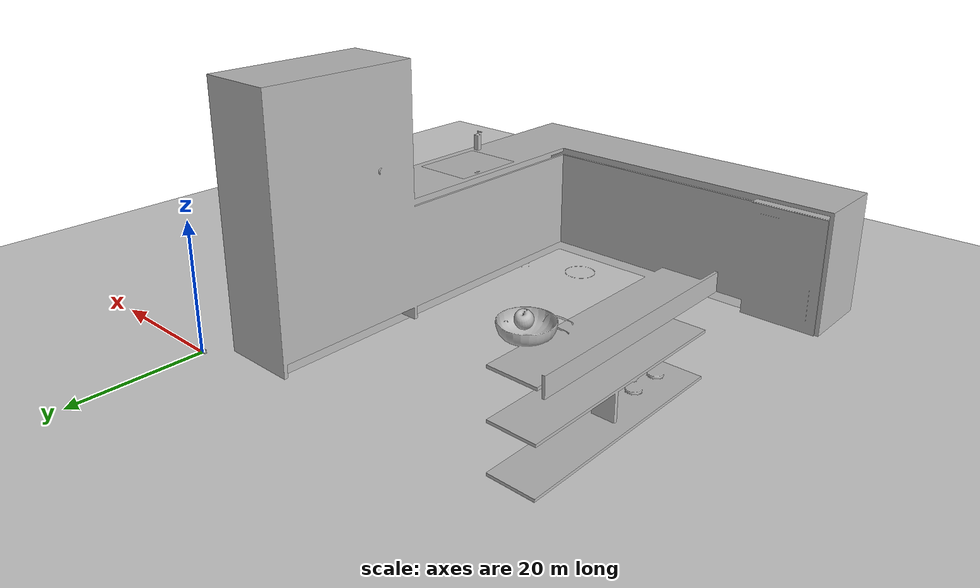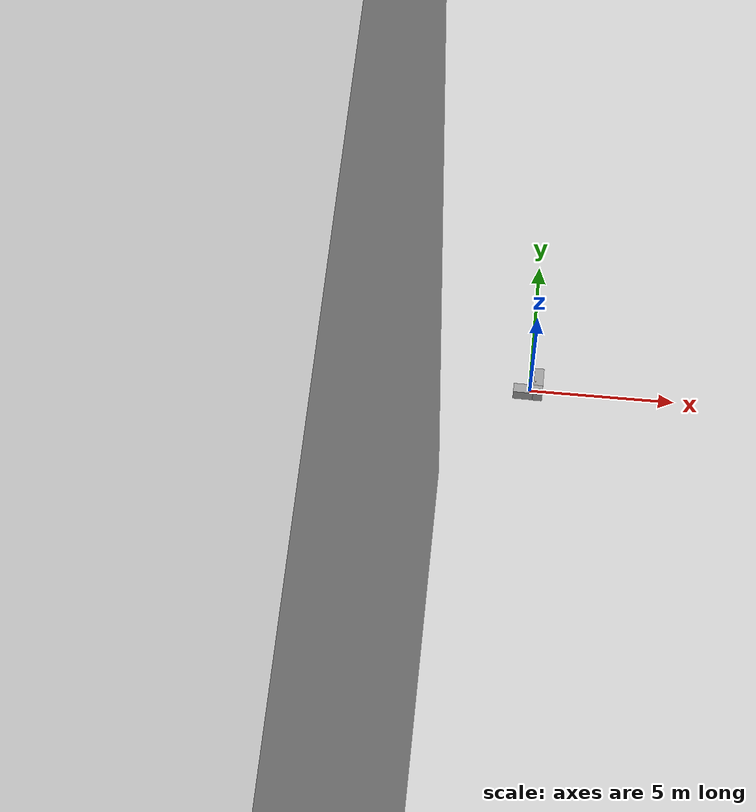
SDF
<sdf version="1.7">
 <world name="default">
  <light name="sun" type="directional">
   <pose>0 0 10 0 -0 0</pose>
   <diffuse>0.8 0.8 0.8 1</diffuse>
   <specular>0.2 0.2 0.2 1</specular>
   <attenuation>
    <range>1000</range>
    <constant>0.9</constant>
    <linear>0.01</linear>
    <quadratic>0.001</quadratic>
   </attenuation>
   <direction>-0.5 0.1 -0.9</direction>
   <spot><inner_angle>0</inner_angle><outer_angle>0</outer_angle><falloff>0</falloff></spot>
  </light>
  <model name="ground_plane">
   <static>1</static>
   <link name="link">
    <collision name="collision">
     <geometry><plane><normal>0 0 1</normal><size>100 100</size></plane></geometry>
     <surface>
      <contact><collide_bitmask>65535</collide_bitmask></contact>
      <friction><ode><mu>100</mu><mu2>50</mu2></ode></friction>
     </surface>
    </collision>
    <visual name="visual">
     <cast_shadows>0</cast_shadows>
     <geometry><plane><normal>0 0 1</normal><size>100 100</size></plane></geometry>
     <material>
      <script><uri>file://media/materials/scripts/gazebo.material</uri><name>Gazebo/Grey</name></script>
     </material>
    </visual>
   </link>
  </model>
  <gravity>0 0 -9.8</gravity>
  <magnetic_field>6e-06 2.3e-05 -4.2e-05</magnetic_field>
  <atmosphere type="adiabatic"/>
  <physics type="ode">
   <max_step_size>0.001</max_step_size>
   <real_time_factor>1</real_time_factor>
   <real_time_update_rate>1000</real_time_update_rate>
  </physics>
  <scene><ambient>0.4 0.4 0.4 1</ambient><background>0.7 0.7 0.7 1</background><shadows>1</shadows></scene>
  <spherical_coordinates>
   <surface_model>EARTH_WGS84</surface_model>
   <latitude_deg>0</latitude_deg>
   <longitude_deg>0</longitude_deg>
   <elevation>0</elevation>
   <heading_deg>0</heading_deg>
  </spherical_coordinates>
  <model name="kitchen">
   <static>1</static>
   <link name="kitchen">
    <visual name="visual">
     <geometry><mesh><uri>model://Kitchen/meshes/model.dae</uri><scale>0.5 0.5 0.5</scale></mesh></geometry>
    </visual>
   </link>
   <pose>0.467305 1.57082 0 0 0 -3.13984</pose>
  </model>
  <model name="kitchen_box">
   <link name="link_0">
    <pose>-4.0678 1.99751 0.272777 0 -0 0</pose>
    <visual name="visual">
     <geometry><box><size>0.331403 1 0.5</size></box></geometry>
     <material>
      <lighting>1</lighting>
      <script><uri>file://media/materials/scripts/gazebo.material</uri><name>Gazebo/Grey</name></script>
      <shader type="pixel"/>
     </material>
    </visual>
    <collision name="collision">
     <geometry><box><size>0.331403 1 0.5</size></box></geometry>
     <surface>
      <friction>
       <ode><mu>1</mu><mu2>1</mu2><fdir1>0 0 0</fdir1><slip1>0</slip1><slip2>0</slip2></ode>
       <torsional>
        <coefficient>1</coefficient>
        <patch_radius>0</patch_radius>
        <surface_radius>0</surface_radius>
        <use_patch_radius>1</use_patch_radius>
        <ode><slip>0</slip></ode>
       </torsional>
      </friction>
     </surface>
    </collision>
   </link>
   <link name="link_0_clone">
    <pose>-3.72184 2.32096 0.272777 0 0 -1.57838</pose>
    <visual name="visual">
     <geometry><box><size>0.331403 1 0.5</size></box></geometry>
     <material>
      <lighting>1</lighting>
      <script><uri>file://media/materials/scripts/gazebo.material</uri><name>Gazebo/Grey</name></script>
      <shader type="pixel"/>
     </material>
    </visual>
    <collision name="collision">
     <geometry><box><size>0.331403 1 0.5</size></box></geometry>
     <surface>
      <friction>
       <ode><mu>1</mu><mu2>1</mu2><fdir1>0 0 0</fdir1><slip1>0</slip1><slip2>0</slip2></ode>
       <torsional>
        <coefficient>1</coefficient>
        <patch_radius>0</patch_radius>
        <surface_radius>0</surface_radius>
        <use_patch_radius>1</use_patch_radius>
        <ode><slip>0</slip></ode>
       </torsional>
      </friction>
     </surface>
    </collision>
   </link>
   <static>0</static>
   <pose>-3.80118 2.15024 -0.022776 0 -0 3.13892</pose>
  </model>
  <model name="wood_cube_2_5cm">
   <link name="link">
    <pose>0 0 0.0125 0 -0 0</pose>
    <inertial>
     <mass>0.0073</mass>
     <inertia>
      <ixx>7.60417e-07</ixx>
      <ixy>0</ixy>
      <ixz>0</ixz>
      <iyy>7.60417e-07</iyy>
      <iyz>0</iyz>
      <izz>7.60417e-07</izz>
     </inertia>
    </inertial>
    <collision name="collision">
     <geometry><box><size>0.025 0.025 0.025</size></box></geometry>
     <surface>
      <contact>
       <poissons_ratio>0.347</poissons_ratio>
       <elastic_modulus>8.8e+09</elastic_modulus>
       <ode><kp>100000</kp><kd>100</kd><max_vel>100</max_vel><min_depth>0.001</min_depth></ode>
      </contact>
      <friction>
       <torsional>
        <coefficient>1</coefficient>
        <use_patch_radius>0</use_patch_radius>
        <surface_radius>0.01</surface_radius>
       </torsional>
      </friction>
     </surface>
    </collision>
    <visual name="visual">
     <geometry><box><size>0.025 0.025 0.025</size></box></geometry>
     <material>
      <script><uri>file://media/materials/scripts/gazebo.material</uri><name>Gazebo/Wood</name></script>
     </material>
    </visual>
   </link>
   <pose>0.164401 0.112159 0.499996 -1e-06 -4.1e-05 -0.018136</pose>
  </model>
 </world>
</sdf>
